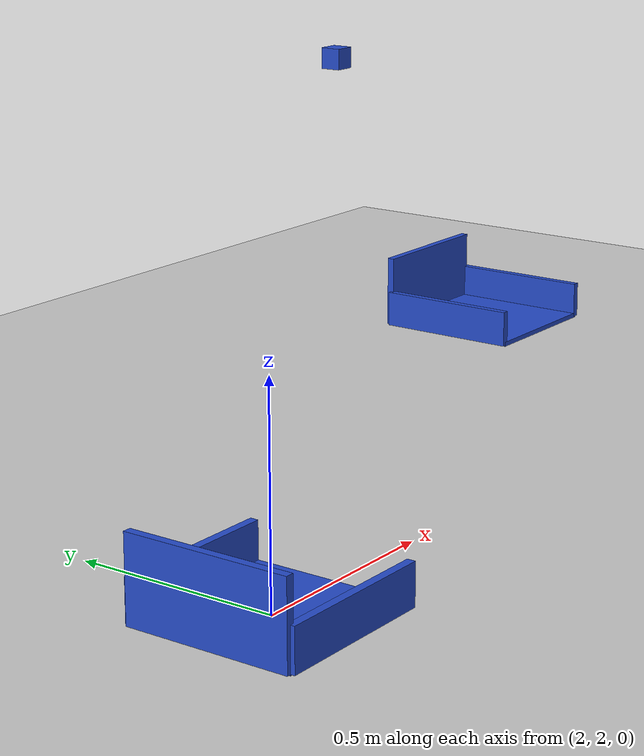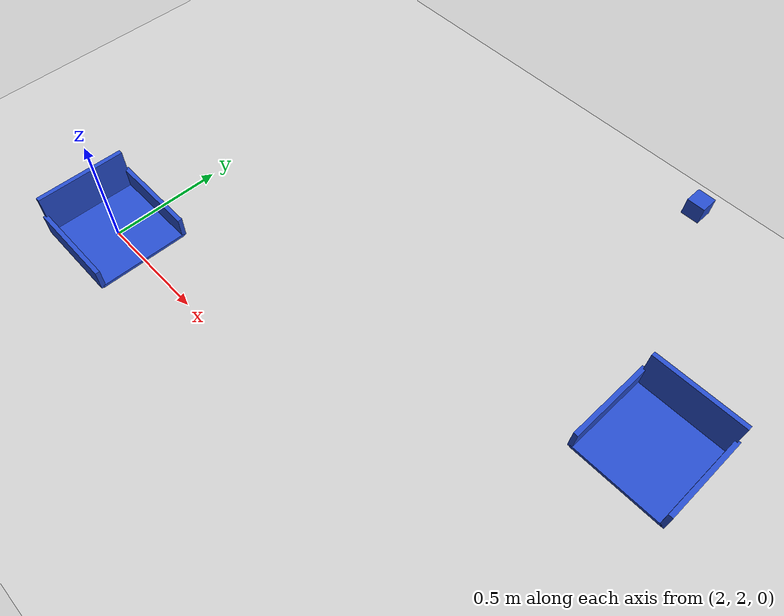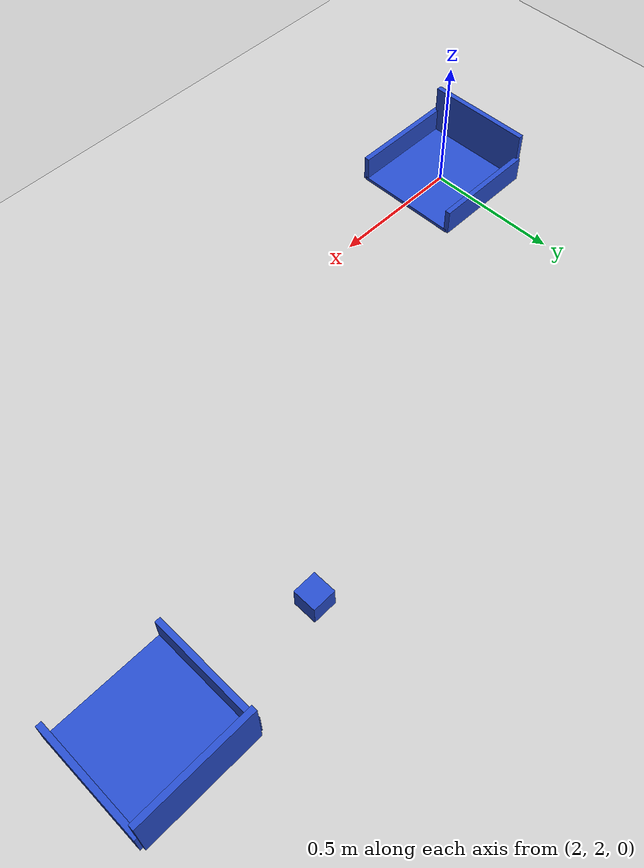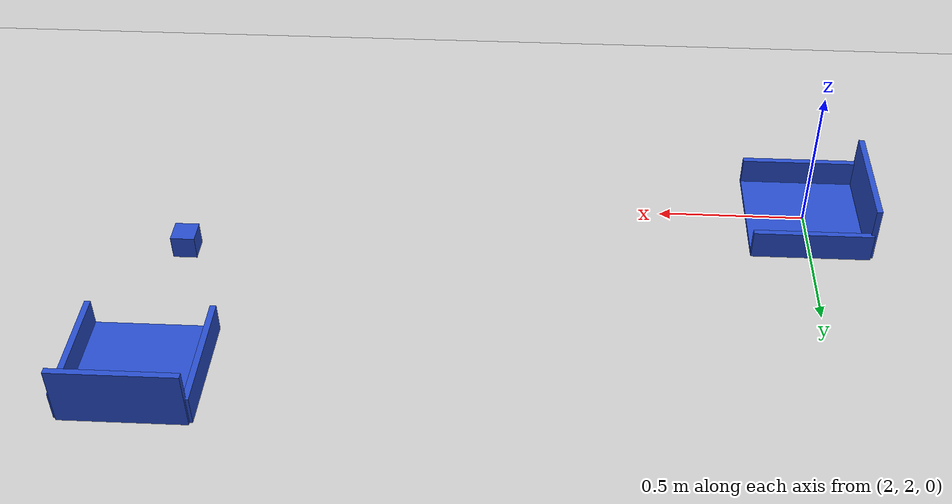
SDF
<sdf version="1.6">
 <world name="default">
  <model name="ground_plane">
   <static>1</static>
   <link name="link">
    <collision name="collision">
     <geometry><plane><normal>0 0 1</normal><size>100 100</size></plane></geometry>
     <surface><friction><ode><mu>100</mu><mu2>50</mu2></ode></friction></surface>
    </collision>
    <visual name="visual">
     <cast_shadows>0</cast_shadows>
     <geometry><plane><normal>0 0 1</normal><size>100 100</size></plane></geometry>
     <material>
      <script><uri>file://media/materials/scripts/gazebo.material</uri><name>Gazebo/Grey</name></script>
     </material>
    </visual>
   </link>
  </model>
  <light name="sun" type="directional">
   <pose>0 0 10 0 -0 0</pose>
   <diffuse>0.8 0.8 0.8 1</diffuse>
   <specular>0.1 0.1 0.1 1</specular>
   <attenuation>
    <range>1000</range>
    <constant>0.9</constant>
    <linear>0.01</linear>
    <quadratic>0.001</quadratic>
   </attenuation>
   <direction>-0.5 0.5 -1</direction>
  </light>
  <model name="bin">
   <static>1</static>
   <link name="bottom">
    <collision name="collision_bottom"><geometry><box><size>0.4 0.4 0.02</size></box></geometry></collision>
    <collision name="collision_left">
     <pose>-0.2 0 0.05 0 -0 0</pose>
     <geometry><box><size>0.02 0.4 0.1</size></box></geometry>
    </collision>
    <collision name="collision_right">
     <pose>0.2 0 0.05 0 -0 0</pose>
     <geometry><box><size>0.02 0.4 0.1</size></box></geometry>
    </collision>
    <collision name="collision_back">
     <pose>0 0.2 0.1 0 -0 0</pose>
     <geometry><box><size>0.4 0.02 0.2</size></box></geometry>
    </collision>
    <visual name="visual_bottom">
     <geometry><box><size>0.4 0.4 0.02</size></box></geometry>
     <material><script><name>Gazebo/Blue</name><uri>__default__</uri></script></material>
    </visual>
    <visual name="visual_left">
     <pose>-0.2 0 0.05 0 -0 0</pose>
     <geometry><box><size>0.02 0.4 0.1</size></box></geometry>
     <material><script><name>Gazebo/Blue</name><uri>__default__</uri></script></material>
    </visual>
    <visual name="visual_right">
     <pose>0.2 0 0.05 0 -0 0</pose>
     <geometry><box><size>0.02 0.4 0.1</size></box></geometry>
     <material><script><name>Gazebo/Blue</name><uri>__default__</uri></script></material>
    </visual>
    <visual name="visual_back">
     <pose>0 0.2 0.1 0 -0 0</pose>
     <geometry><box><size>0.4 0.02 0.2</size></box></geometry>
     <material><script><name>Gazebo/Blue</name><uri>__default__</uri></script></material>
    </visual>
   </link>
   <pose>2 2 0 0 -0 1.57</pose>
  </model>
  <model name="demo_cube">
   <static>0</static>
   <link name="link">
    <inertial>
     <mass>0.25</mass>
     <inertia><ixx>0.001</ixx><ixy>0</ixy><ixz>0</ixz><iyy>0.001</iyy><iyz>0</iyz><izz>0.001</izz></inertia>
    </inertial>
    <collision name="collision">
     <geometry><box><size>0.06 0.06 0.06</size></box></geometry>
     <surface>
      <friction><ode><mu>30</mu><mu2>30</mu2></ode></friction>
      <contact><ode><kp>1e+06</kp><kd>100</kd><max_vel>1</max_vel><min_depth>0.002</min_depth></ode></contact>
     </surface>
    </collision>
    <visual name="visual">
     <geometry><box><size>0.06 0.06 0.06</size></box></geometry>
     <material>
      <script><uri>file://media/materials/scripts/gazebo.material</uri><name>Gazebo/Blue</name></script>
     </material>
    </visual>
    <velocity_decay><linear>0</linear><angular>0</angular></velocity_decay>
   </link>
   <pose>3.8 3.15 0.803204 0 -0 0</pose>
  </model>
  <gravity>0 0 -9.8</gravity>
  <magnetic_field>6e-06 2.3e-05 -4.2e-05</magnetic_field>
  <atmosphere type="adiabatic"/>
  <physics name="default_physics" default="0" type="ode">
   <max_step_size>0.001</max_step_size>
   <real_time_factor>1</real_time_factor>
   <real_time_update_rate>1000</real_time_update_rate>
  </physics>
  <scene><ambient>0.4 0.4 0.4 1</ambient><background>0.7 0.7 0.7 1</background><shadows>1</shadows></scene>
  <spherical_coordinates>
   <surface_model>EARTH_WGS84</surface_model>
   <latitude_deg>0</latitude_deg>
   <longitude_deg>0</longitude_deg>
   <elevation>0</elevation>
   <heading_deg>0</heading_deg>
  </spherical_coordinates>
  <model name="box">
   <static>1</static>
   <link name="bottom">
    <collision name="collision_bottom"><geometry><box><size>0.4 0.4 0.02</size></box></geometry></collision>
    <collision name="collision_left">
     <pose>-0.2 0 0.05 0 -0 0</pose>
     <geometry><box><size>0.02 0.4 0.1</size></box></geometry>
    </collision>
    <collision name="collision_right">
     <pose>0.2 0 0.05 0 -0 0</pose>
     <geometry><box><size>0.02 0.4 0.1</size></box></geometry>
    </collision>
    <collision name="collision_back">
     <pose>0 0.2 0.1 0 -0 0</pose>
     <geometry><box><size>0.4 0.02 0.2</size></box></geometry>
    </collision>
    <visual name="visual_bottom">
     <geometry><box><size>0.4 0.4 0.02</size></box></geometry>
     <material><script><name>Gazebo/Blue</name><uri>__default__</uri></script></material>
    </visual>
    <visual name="visual_left">
     <pose>-0.2 0 0.05 0 -0 0</pose>
     <geometry><box><size>0.02 0.4 0.1</size></box></geometry>
     <material><script><name>Gazebo/Blue</name><uri>__default__</uri></script></material>
    </visual>
    <visual name="visual_right">
     <pose>0.2 0 0.05 0 -0 0</pose>
     <geometry><box><size>0.02 0.4 0.1</size></box></geometry>
     <material><script><name>Gazebo/Blue</name><uri>__default__</uri></script></material>
    </visual>
    <visual name="visual_back">
     <pose>0 0.2 0.1 0 -0 0</pose>
     <geometry><box><size>0.4 0.02 0.2</size></box></geometry>
     <material><script><name>Gazebo/Blue</name><uri>__default__</uri></script></material>
    </visual>
   </link>
   <pose>4.1319 2.8493 0 0 -0 0</pose>
  </model>
 </world>
</sdf>
